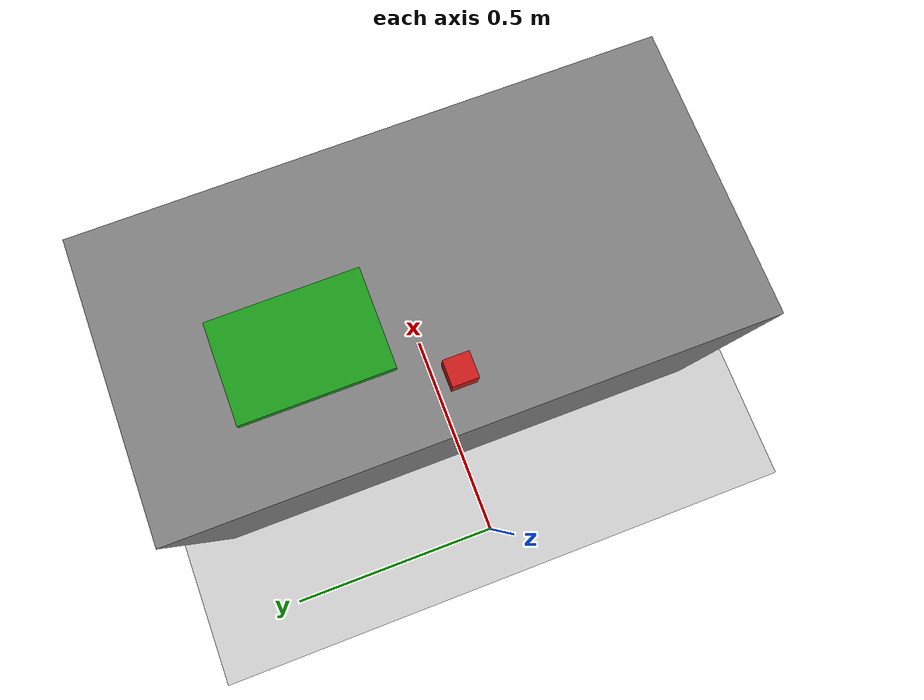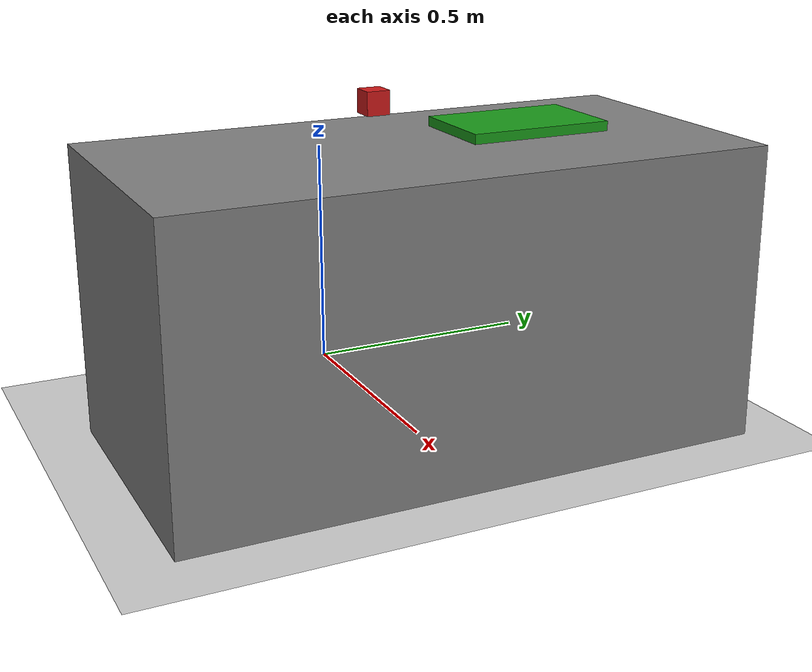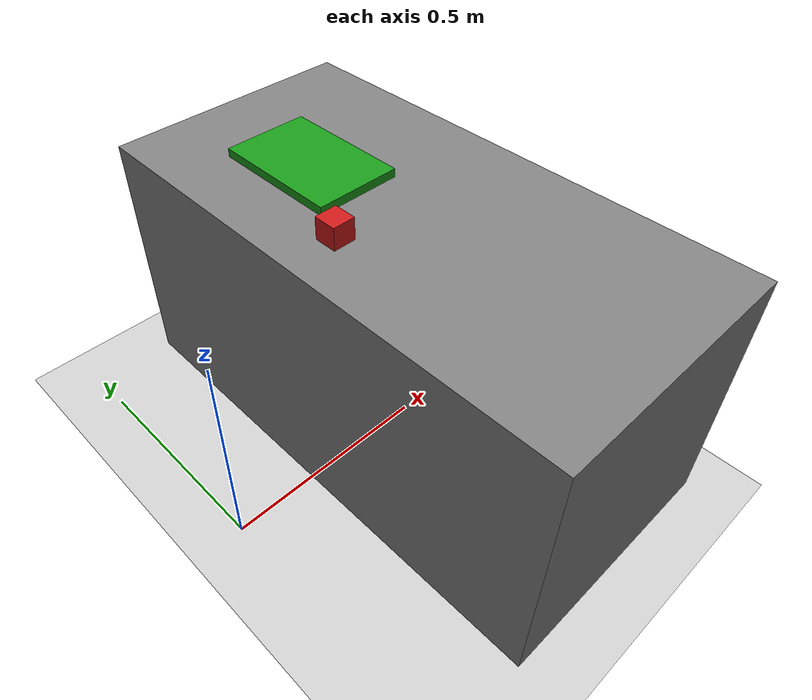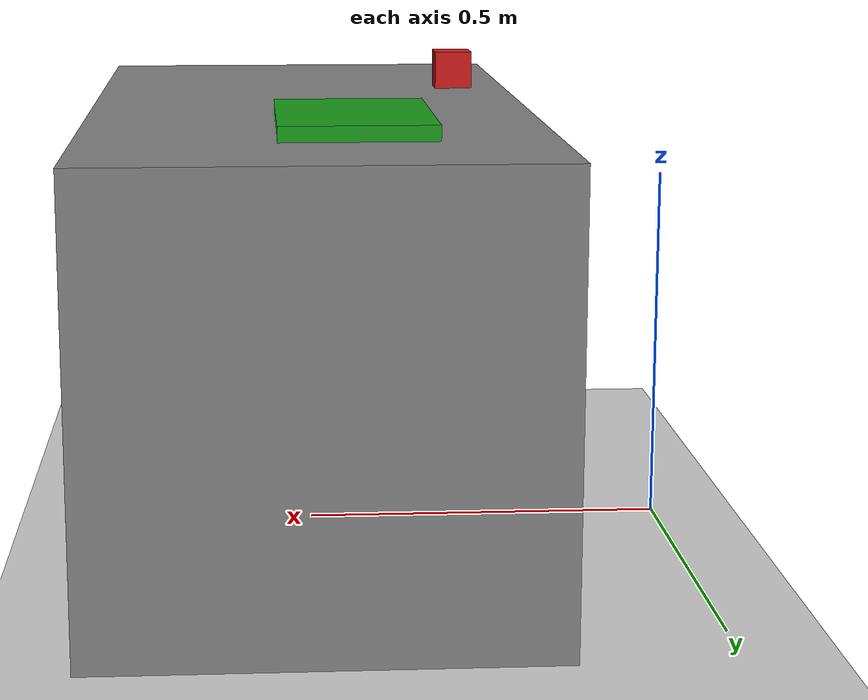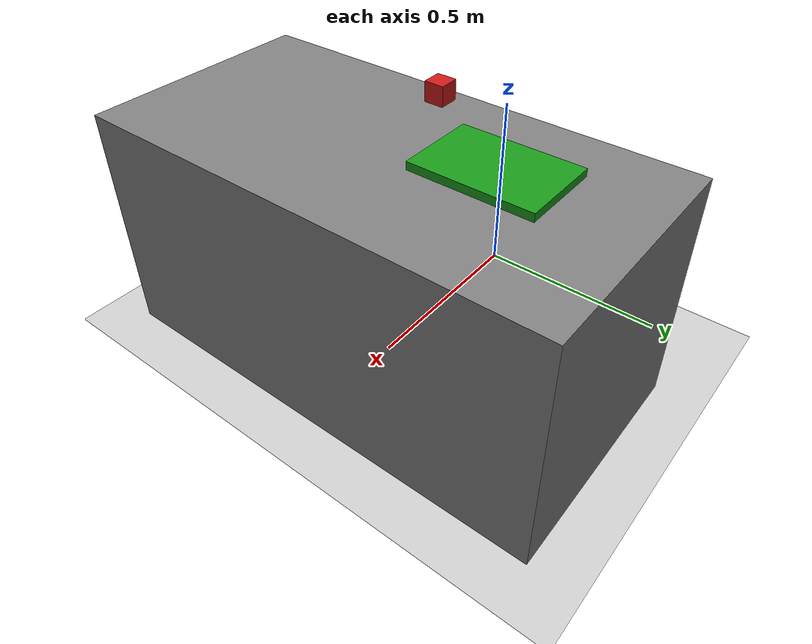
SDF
<?xml version="1.0" ?>
<sdf version="1.9">
  <world name="pick_and_place_world">

    <!-- Physics -->
    <physics name="2ms" type="ignored">
      <max_step_size>0.002</max_step_size>
      <real_time_factor>0</real_time_factor>
      <real_time_update_rate>0</real_time_update_rate>
    </physics>

    <!-- Plugins -->
    <plugin filename="gz-sim-physics-system" name="gz::sim::systems::Physics"/>
    <plugin filename="gz-sim-user-commands-system" name="gz::sim::systems::UserCommands"/>
    <plugin filename="gz-sim-scene-broadcaster-system" name="gz::sim::systems::SceneBroadcaster"/>
    <plugin filename="gz-sim-sensors-system" name="gz::sim::systems::Sensors">
      <render_engine>ogre2</render_engine>
    </plugin>

    <!-- Işık -->
    <light type="directional" name="sun">
      <cast_shadows>true</cast_shadows>
      <pose>0 0 10 0 0 0</pose>
      <diffuse>0.8 0.8 0.8 1</diffuse>
    </light>

    <!-- Zemin -->
    <model name="ground_plane">
      <static>true</static>
      <link name="link">
        <collision name="collision">
          <geometry><plane><normal>0 0 1</normal></plane></geometry>
        </collision>
        <visual name="visual">
          <geometry><plane><normal>0 0 1</normal><size>20 20</size></plane></geometry>
          <material><ambient>0.8 0.8 0.8 1</ambient></material>
        </visual>
      </link>
    </model>

    <!-- Çalışma Tezgahı -->
    <model name="work_table">
      <static>true</static>
      <pose>0.5 0 0.3 0 0 0</pose>
      <link name="link">
        <collision name="collision">
          <geometry><box><size>0.6 1.2 0.6</size></box></geometry>
        </collision>
        <visual name="visual">
          <geometry><box><size>0.6 1.2 0.6</size></box></geometry>
          <material>
            <ambient>0.3 0.3 0.3 1</ambient>
            <diffuse>0.5 0.5 0.5 1</diffuse>
          </material>
        </visual>
      </link>
    </model>

    <!-- Toplanacak Nesne (Kırmızı Kutu) -->
    <include>
      <uri>model://pick_object</uri>
      <pose>0.3 0.0 0.65 0 0 0</pose>
    </include>

    <!-- Bırakılacak Tepsi -->
    <include>
      <uri>model://place_tray</uri>
      <pose>0.45 0.25 0.61 0 0 0</pose>
    </include>

  </world>
</sdf>

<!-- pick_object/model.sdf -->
<sdf version="1.9">
  <model name="pick_object">
    <pose>0.45 0.0 0.625 0 0 0</pose>
    <link name="box_link">
      <inertial>
        <mass>0.1</mass>
        <inertia><ixx>4.17e-5</ixx><iyy>4.17e-5</iyy><izz>4.17e-5</izz></inertia>
      </inertial>
      <collision name="collision">
        <geometry><box><size>0.05 0.05 0.05</size></box></geometry>
        <surface>
          <friction><ode><mu>0.6</mu><mu2>0.6</mu2></ode></friction>
        </surface>
      </collision>
      <visual name="visual">
        <geometry><box><size>0.05 0.05 0.05</size></box></geometry>
        <material>
          <ambient>0.8 0.1 0.1 1</ambient>
          <diffuse>0.8 0.1 0.1 1</diffuse>
        </material>
      </visual>
    </link>
  </model>
</sdf>

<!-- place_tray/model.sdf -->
<sdf version="1.9">
  <model name="place_tray">
    <static>true</static>
    <pose>0.45 0.25 0.61 0 0 0</pose>
    <link name="tray_link">
      <collision name="collision">
        <geometry><box><size>0.2 0.3 0.02</size></box></geometry>
      </collision>
      <visual name="visual">
        <geometry><box><size>0.2 0.3 0.02</size></box></geometry>
        <material>
          <ambient>0.1 0.6 0.1 1</ambient>
          <diffuse>0.1 0.6 0.1 1</diffuse>
        </material>
      </visual>
    </link>
  </model>
</sdf>
